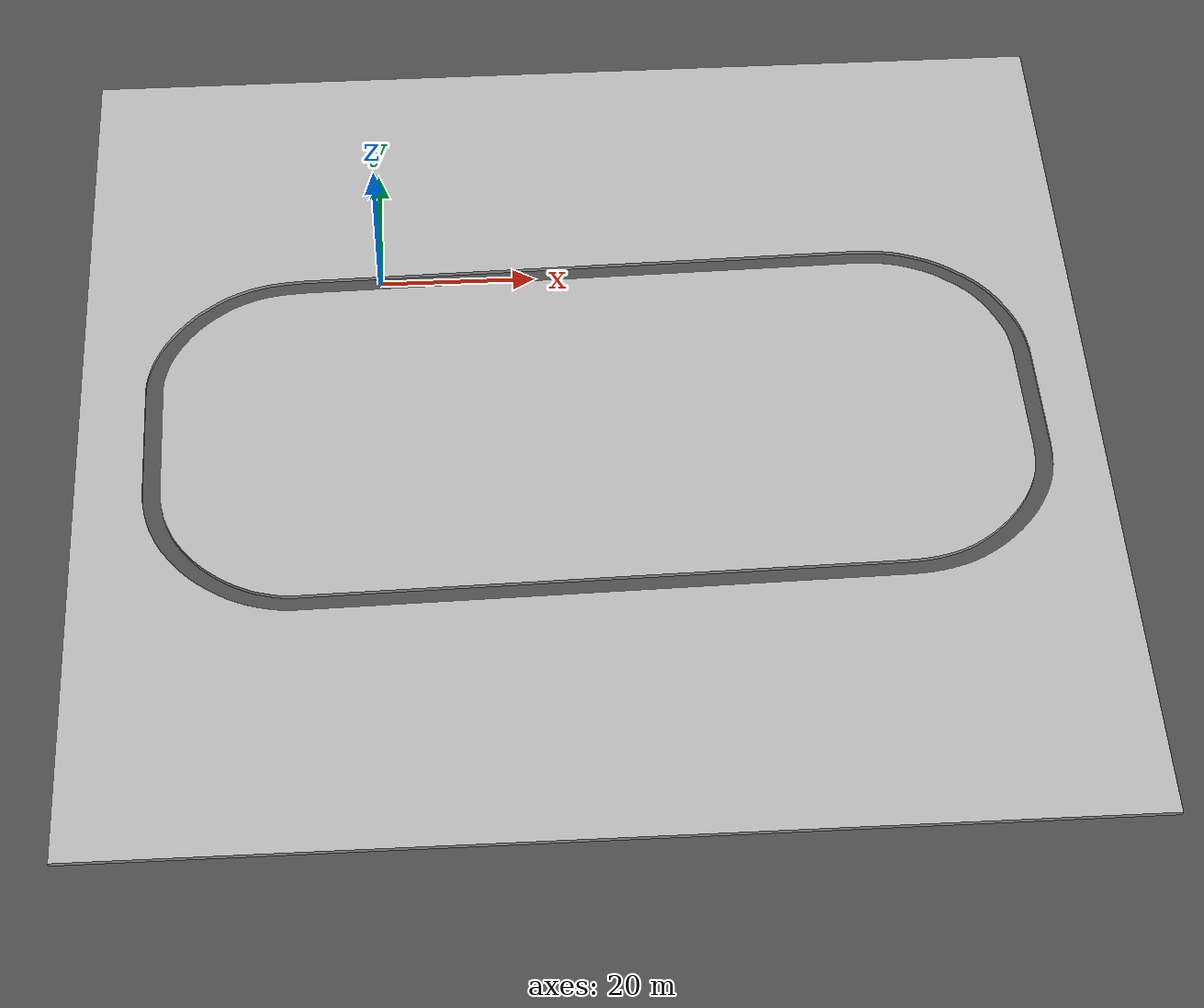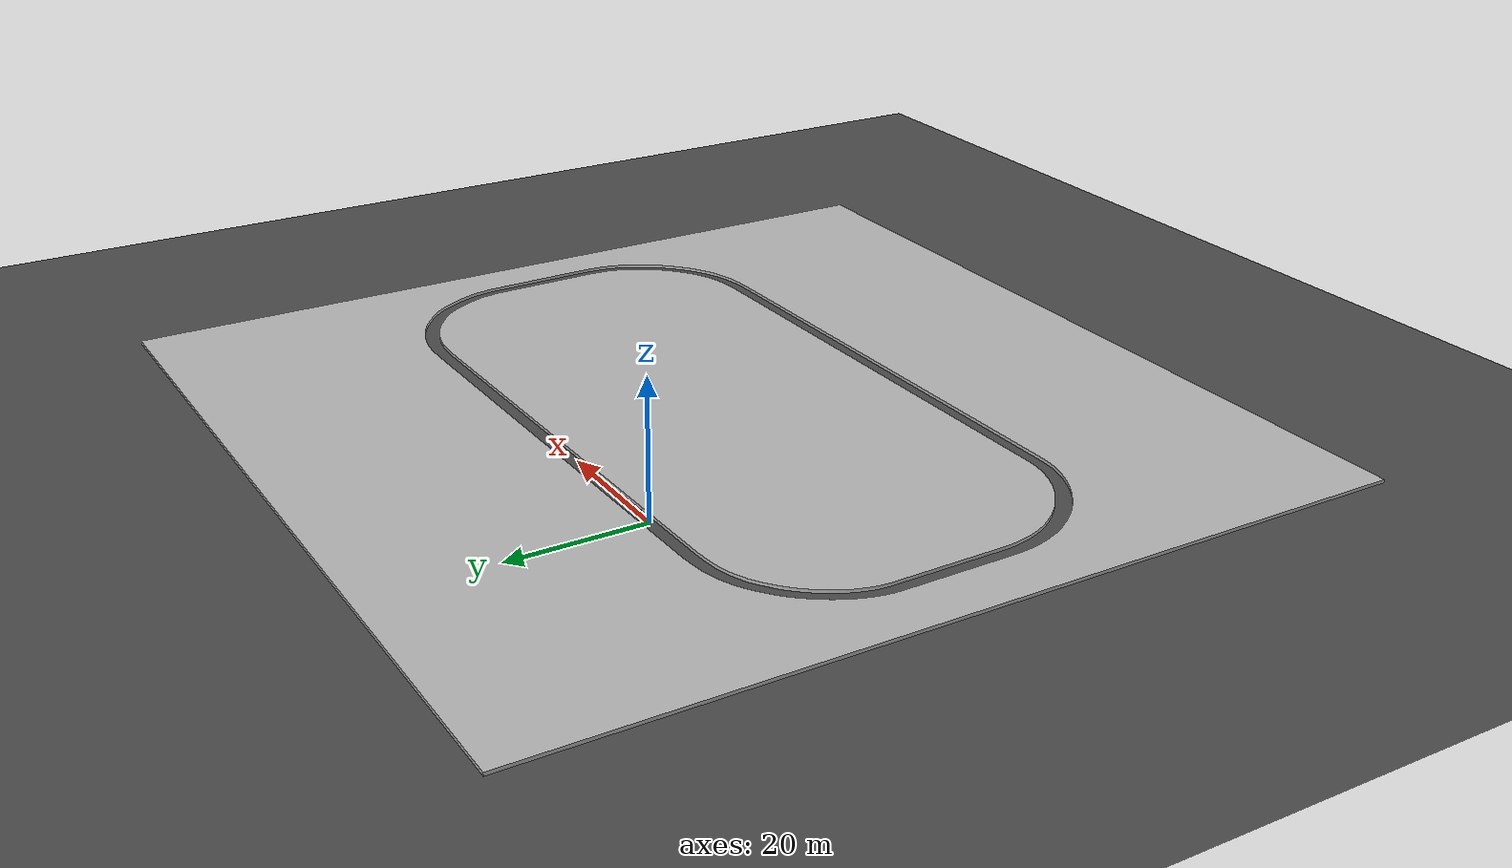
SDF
<sdf version="1.7">
 <world name="default">
  <light name="sun" type="directional">
   <pose>0 0 100 0 -0 0</pose>
   <diffuse>0.8 0.8 0.8 1</diffuse>
   <specular>0.1 0.1 0.1 1</specular>
   <attenuation>
    <range>1000</range>
    <constant>0.9</constant>
    <linear>0.01</linear>
    <quadratic>0.001</quadratic>
   </attenuation>
   <direction>-0.5 0.5 -1</direction>
   <spot><inner_angle>0</inner_angle><outer_angle>0</outer_angle><falloff>0</falloff></spot>
  </light>
  <model name="ground_plane">
   <static>1</static>
   <link name="link">
    <collision name="collision">
     <geometry><plane><normal>0 0 1</normal><size>1000 1000</size></plane></geometry>
     <surface><friction><ode><mu>100</mu><mu2>50</mu2></ode></friction></surface>
    </collision>
    <visual name="visual">
     <cast_shadows>0</cast_shadows>
     <geometry><plane><normal>0 0 1</normal><size>1000 1000</size></plane></geometry>
     <material>
      <script>
       <uri>model://asphalt_plane/materials/scripts</uri>
       <uri>model://asphalt_plane/materials/textures</uri>
       <name>vrc/asphalt</name>
      </script>
     </material>
    </visual>
   </link>
  </model>
  <gravity>0 0 -9.8</gravity>
  <magnetic_field>6e-06 2.3e-05 -4.2e-05</magnetic_field>
  <atmosphere type="adiabatic"/>
  <physics name="default_physics" default="0" type="ode">
   <max_step_size>0.001</max_step_size>
   <real_time_factor>1</real_time_factor>
   <real_time_update_rate>1000</real_time_update_rate>
  </physics>
  <scene><ambient>0.4 0.4 0.4 1</ambient><background>0.7 0.7 0.7 1</background><shadows>0</shadows></scene>
  <spherical_coordinates>
   <surface_model>EARTH_WGS84</surface_model>
   <latitude_deg>0</latitude_deg>
   <longitude_deg>0</longitude_deg>
   <elevation>0</elevation>
   <heading_deg>0</heading_deg>
  </spherical_coordinates>
  <model name="IMS_track">
   <pose>80.9696 31.1068 -1.2 0 -0 0</pose>
   <static>1</static>
   <link name="body">
    <collision name="collision">
     <geometry><mesh><uri>model://IMS_track/IMS_track.dae</uri><scale>1 1 1</scale></mesh></geometry>
    </collision>
    <visual name="visual">
     <geometry><mesh><uri>model://IMS_track/IMS_track.dae</uri><scale>1 1 1</scale></mesh></geometry>
    </visual>
   </link>
  </model>
  <audio><device>default</device></audio>
 </world>
</sdf>
